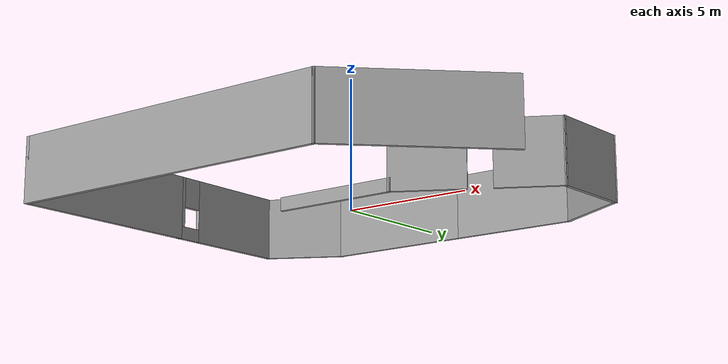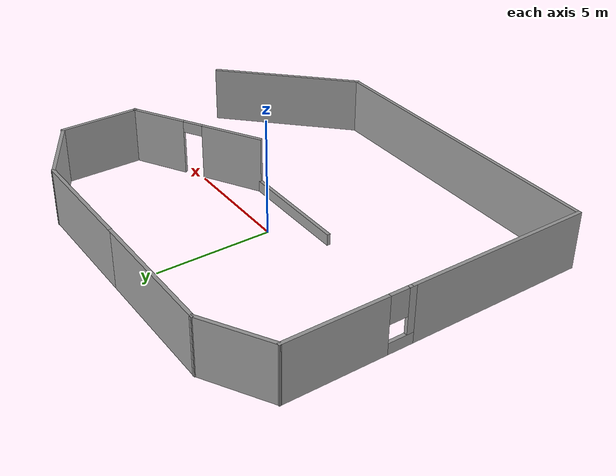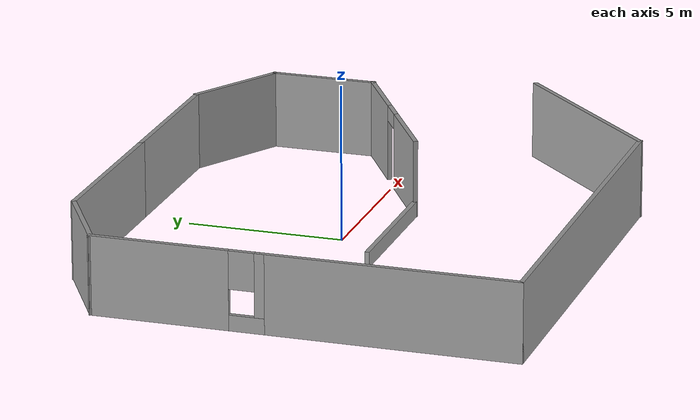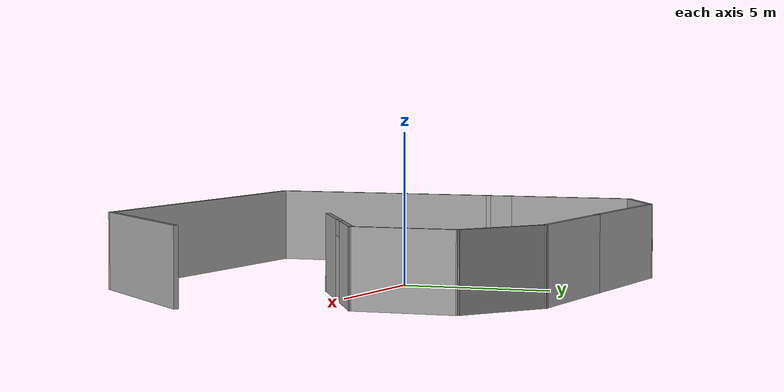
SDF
<?xml version='1.0'?>
<sdf version='1.7'>
  <model name='1st_world'>
    <pose>0.59715 -0.781807 0 0 -0 0</pose>
    <link name='Wall_0'>
      <collision name='Wall_0_Collision'>
        <geometry>
          <box>
            <size>5 0.15 0.5</size>
          </box>
        </geometry>
        <pose>0 0 0.25 0 -0 0</pose>
      </collision>
      <visual name='Wall_0_Visual'>
        <pose>0 0 0.25 0 -0 0</pose>
        <geometry>
          <box>
            <size>5 0.15 0.5</size>
          </box>
        </geometry>
        <material>
          <script>
            <uri>file://media/materials/scripts/gazebo.material</uri>
            <name>Gazebo/Grey</name>
          </script>
          <ambient>1 1 1 1</ambient>
        </material>
        <meta>
          <layer>0</layer>
        </meta>
      </visual>
      <pose>-0.18215 -0.698193 0 0 -0 0</pose>
    </link>
    <link name='Wall_1'>
      <pose>4.88423 0.826807 0 0 -0 0.523599</pose>
      <visual name='Wall_1_Visual_0'>
        <pose>-1.72454 0 1.25 0 -0 0</pose>
        <geometry>
          <box>
            <size>2.80092 0.15 2.5</size>
          </box>
        </geometry>
        <material>
          <script>
            <uri>file://media/materials/scripts/gazebo.material</uri>
            <name>Gazebo/Grey</name>
          </script>
          <ambient>1 1 1 1</ambient>
        </material>
        <meta>
          <layer>0</layer>
        </meta>
      </visual>
      <collision name='Wall_1_Collision_0'>
        <geometry>
          <box>
            <size>2.80092 0.15 2.5</size>
          </box>
        </geometry>
        <pose>-1.72454 0 1.25 0 -0 0</pose>
      </collision>
      <visual name='Wall_1_Visual_1'>
        <pose>1.85046 0 1.25 0 -0 0</pose>
        <geometry>
          <box>
            <size>2.54908 0.15 2.5</size>
          </box>
        </geometry>
        <material>
          <script>
            <uri>file://media/materials/scripts/gazebo.material</uri>
            <name>Gazebo/Grey</name>
          </script>
          <ambient>1 1 1 1</ambient>
        </material>
        <meta>
          <layer>0</layer>
        </meta>
      </visual>
      <collision name='Wall_1_Collision_1'>
        <geometry>
          <box>
            <size>2.54908 0.15 2.5</size>
          </box>
        </geometry>
        <pose>1.85046 0 1.25 0 -0 0</pose>
      </collision>
      <visual name='Wall_1_Visual_2'>
        <pose>0.125918 0 2.25 0 -0 0</pose>
        <geometry>
          <box>
            <size>0.9 0.15 0.5</size>
          </box>
        </geometry>
        <material>
          <script>
            <uri>file://media/materials/scripts/gazebo.material</uri>
            <name>Gazebo/Grey</name>
          </script>
          <ambient>1 1 1 1</ambient>
        </material>
        <meta>
          <layer>0</layer>
        </meta>
      </visual>
      <collision name='Wall_1_Collision_2'>
        <geometry>
          <box>
            <size>0.9 0.15 0.5</size>
          </box>
        </geometry>
        <pose>0.125918 0 2.25 0 -0 0</pose>
      </collision>
    </link>
    <link name='Wall_10'>
      <collision name='Wall_10_Collision'>
        <geometry>
          <box>
            <size>6.75 0.15 2.5</size>
          </box>
        </geometry>
        <pose>0 0 1.25 0 -0 0</pose>
      </collision>
      <visual name='Wall_10_Visual'>
        <pose>0 0 1.25 0 -0 0</pose>
        <geometry>
          <box>
            <size>6.75 0.15 2.5</size>
          </box>
        </geometry>
        <material>
          <script>
            <uri>file://media/materials/scripts/gazebo.material</uri>
            <name>Gazebo/Grey</name>
          </script>
          <ambient>1 1 1 1</ambient>
        </material>
        <meta>
          <layer>0</layer>
        </meta>
      </visual>
      <pose>6.67319 -5.03974 0 0 -0 0.785398</pose>
    </link>
    <link name='Wall_2'>
      <collision name='Wall_2_Collision'>
        <geometry>
          <box>
            <size>3.5 0.15 2.5</size>
          </box>
        </geometry>
        <pose>0 0 1.25 0 -0 0</pose>
      </collision>
      <visual name='Wall_2_Visual'>
        <pose>0 0 1.25 0 -0 0</pose>
        <geometry>
          <box>
            <size>3.5 0.15 2.5</size>
          </box>
        </geometry>
        <material>
          <script>
            <uri>file://media/materials/scripts/gazebo.material</uri>
            <name>Gazebo/Grey</name>
          </script>
          <ambient>1 1 1 1</ambient>
        </material>
        <meta>
          <layer>0</layer>
        </meta>
      </visual>
      <pose>7.5256 4.02681 0 0 -0 1.5708</pose>
    </link>
    <link name='Wall_3'>
      <collision name='Wall_3_Collision'>
        <geometry>
          <box>
            <size>3.5 0.15 2.5</size>
          </box>
        </geometry>
        <pose>0 0 1.25 0 -0 0</pose>
      </collision>
      <visual name='Wall_3_Visual'>
        <pose>0 0 1.25 0 -0 0</pose>
        <geometry>
          <box>
            <size>3.5 0.15 2.5</size>
          </box>
        </geometry>
        <material>
          <script>
            <uri>file://media/materials/scripts/gazebo.material</uri>
            <name>Gazebo/Grey</name>
          </script>
          <ambient>1 1 1 1</ambient>
        </material>
        <meta>
          <layer>0</layer>
        </meta>
      </visual>
      <pose>6.07501 6.53931 0 0 -0 2.61799</pose>
    </link>
    <link name='Wall_4'>
      <collision name='Wall_4_Collision'>
        <geometry>
          <box>
            <size>5.25 0.15 2.5</size>
          </box>
        </geometry>
        <pose>0 0 1.25 0 -0 0</pose>
      </collision>
      <visual name='Wall_4_Visual'>
        <pose>0 0 1.25 0 -0 0</pose>
        <geometry>
          <box>
            <size>5.25 0.15 2.5</size>
          </box>
        </geometry>
        <material>
          <script>
            <uri>file://media/materials/scripts/gazebo.material</uri>
            <name>Gazebo/Grey</name>
          </script>
          <ambient>1 1 1 1</ambient>
        </material>
        <meta>
          <layer>0</layer>
        </meta>
      </visual>
      <pose>2.07442 7.37681 0 0 -0 3.14159</pose>
    </link>
    <link name='Wall_5'>
      <collision name='Wall_5_Collision'>
        <geometry>
          <box>
            <size>6 0.15 2.5</size>
          </box>
        </geometry>
        <pose>0 0 1.25 0 -0 0</pose>
      </collision>
      <visual name='Wall_5_Visual'>
        <pose>0 0 1.25 0 -0 0</pose>
        <geometry>
          <box>
            <size>6 0.15 2.5</size>
          </box>
        </geometry>
        <material>
          <script>
            <uri>file://media/materials/scripts/gazebo.material</uri>
            <name>Gazebo/Grey</name>
          </script>
          <ambient>1 1 1 1</ambient>
        </material>
        <meta>
          <layer>0</layer>
        </meta>
      </visual>
      <pose>-3.40058 7.37681 0 0 -0 3.14159</pose>
    </link>
    <link name='Wall_6'>
      <collision name='Wall_6_Collision'>
        <geometry>
          <box>
            <size>3.25 0.15 2.5</size>
          </box>
        </geometry>
        <pose>0 0 1.25 0 -0 0</pose>
      </collision>
      <visual name='Wall_6_Visual'>
        <pose>0 0 1.25 0 -0 0</pose>
        <geometry>
          <box>
            <size>3.25 0.15 2.5</size>
          </box>
        </geometry>
        <material>
          <script>
            <uri>file://media/materials/scripts/gazebo.material</uri>
            <name>Gazebo/Grey</name>
          </script>
          <ambient>1 1 1 1</ambient>
        </material>
        <meta>
          <layer>0</layer>
        </meta>
      </visual>
      <pose>-7.66792 6.60181 0 0 -0 -2.61799</pose>
    </link>
    <link name='Wall_7'>
      <pose>-9.01026 3.15181 0 0 -0 -1.5708</pose>
      <visual name='Wall_7_Visual_0'>
        <pose>-0.553728 0 1.25 0 -0 0</pose>
        <geometry>
          <box>
            <size>4.39254 0.15 2.5</size>
          </box>
        </geometry>
        <material>
          <script>
            <uri>file://media/materials/scripts/gazebo.material</uri>
            <name>Gazebo/Grey</name>
          </script>
          <ambient>1 1 1 1</ambient>
        </material>
        <meta>
          <layer>0</layer>
        </meta>
      </visual>
      <collision name='Wall_7_Collision_0'>
        <geometry>
          <box>
            <size>4.39254 0.15 2.5</size>
          </box>
        </geometry>
        <pose>-0.553728 0 1.25 0 -0 0</pose>
      </collision>
      <visual name='Wall_7_Visual_1'>
        <pose>2.19627 0 0.25 0 -0 0</pose>
        <geometry>
          <box>
            <size>1.10746 0.15 0.5</size>
          </box>
        </geometry>
        <material>
          <script>
            <uri>file://media/materials/scripts/gazebo.material</uri>
            <name>Gazebo/Grey</name>
          </script>
          <ambient>1 1 1 1</ambient>
        </material>
        <meta>
          <layer>0</layer>
        </meta>
      </visual>
      <collision name='Wall_7_Collision_1'>
        <geometry>
          <box>
            <size>1.10746 0.15 0.5</size>
          </box>
        </geometry>
        <pose>2.19627 0 0.25 0 -0 0</pose>
      </collision>
      <visual name='Wall_7_Visual_2'>
        <pose>2.59627 0 1.5 0 -0 0</pose>
        <geometry>
          <box>
            <size>0.307456 0.15 2</size>
          </box>
        </geometry>
        <material>
          <script>
            <uri>file://media/materials/scripts/gazebo.material</uri>
            <name>Gazebo/Grey</name>
          </script>
          <ambient>1 1 1 1</ambient>
        </material>
        <meta>
          <layer>0</layer>
        </meta>
      </visual>
      <collision name='Wall_7_Collision_2'>
        <geometry>
          <box>
            <size>0.307456 0.15 2</size>
          </box>
        </geometry>
        <pose>2.59627 0 1.5 0 -0 0</pose>
      </collision>
      <visual name='Wall_7_Visual_3'>
        <pose>2.04254 0 1.9 0 -0 0</pose>
        <geometry>
          <box>
            <size>0.8 0.15 1.2</size>
          </box>
        </geometry>
        <material>
          <script>
            <uri>file://media/materials/scripts/gazebo.material</uri>
            <name>Gazebo/Grey</name>
          </script>
          <ambient>1 1 1 1</ambient>
        </material>
        <meta>
          <layer>0</layer>
        </meta>
      </visual>
      <collision name='Wall_7_Collision_3'>
        <geometry>
          <box>
            <size>0.8 0.15 1.2</size>
          </box>
        </geometry>
        <pose>2.04254 0 1.9 0 -0 0</pose>
      </collision>
    </link>
    <link name='Wall_8'>
      <collision name='Wall_8_Collision'>
        <geometry>
          <box>
            <size>8 0.15 2.5</size>
          </box>
        </geometry>
        <pose>0 0 1.25 0 -0 0</pose>
      </collision>
      <visual name='Wall_8_Visual'>
        <pose>0 0 1.25 0 -0 0</pose>
        <geometry>
          <box>
            <size>8 0.15 2.5</size>
          </box>
        </geometry>
        <material>
          <script>
            <uri>file://media/materials/scripts/gazebo.material</uri>
            <name>Gazebo/Grey</name>
          </script>
          <ambient>1 1 1 1</ambient>
        </material>
        <meta>
          <layer>0</layer>
        </meta>
      </visual>
      <pose>-9.01026 -3.44819 0 0 -0 -1.5708</pose>
    </link>
    <link name='Wall_9'>
      <collision name='Wall_9_Collision'>
        <geometry>
          <box>
            <size>13.5 0.15 2.5</size>
          </box>
        </geometry>
        <pose>0 0 1.25 0 -0 0</pose>
      </collision>
      <visual name='Wall_9_Visual'>
        <pose>0 0 1.25 0 -0 0</pose>
        <geometry>
          <box>
            <size>13.5 0.15 2.5</size>
          </box>
        </geometry>
        <material>
          <script>
            <uri>file://media/materials/scripts/gazebo.material</uri>
            <name>Gazebo/Grey</name>
          </script>
          <ambient>1 1 1 1</ambient>
        </material>
        <meta>
          <layer>0</layer>
        </meta>
      </visual>
      <pose>-2.33526 -7.37319 0 0 -0 0</pose>
    </link>
    <static>1</static>
  </model>
</sdf>
